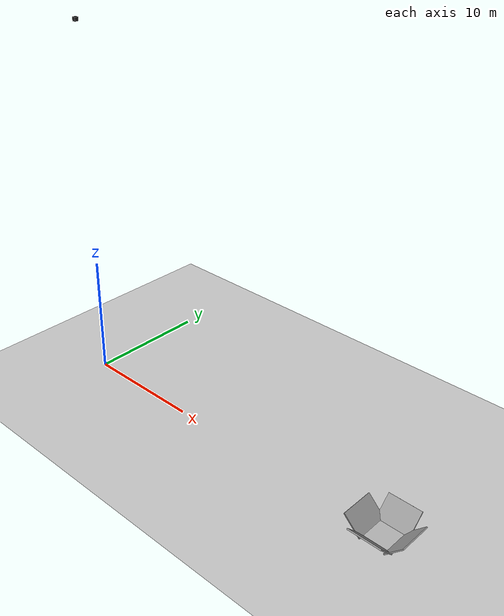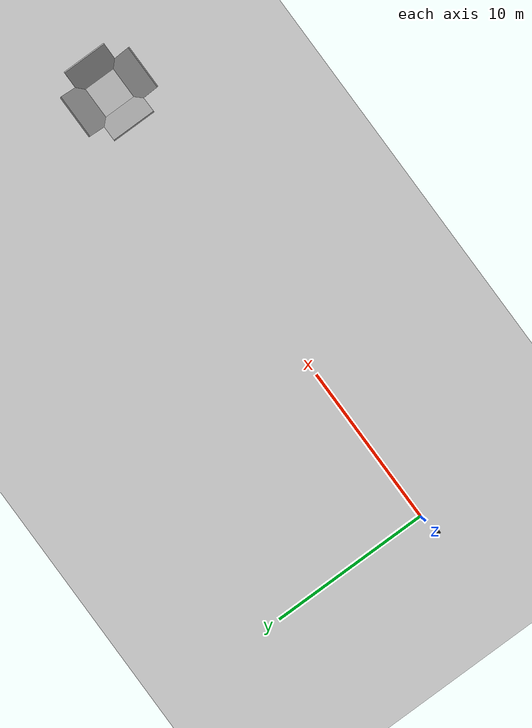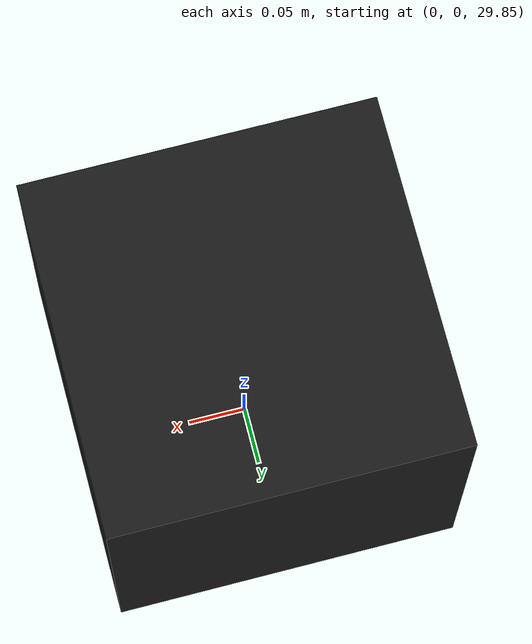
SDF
<sdf version="1.6">
 <world name="gokdogan_test">
  <include><uri>model://sun</uri></include>
  <include><uri>model://ground_plane</uri></include>
  <physics type="ode">
   <real_time_update_rate>200</real_time_update_rate>
   <max_step_size>0.005</max_step_size>
  </physics>
  <scene><ambient>0.6 0.6 0.6 1</ambient><background>0.5 0.7 1.0 1</background></scene>
  <model name="gokdogan_camera">
   <static>true</static>
   <pose>0 0 30 0 0 0</pose>
   <link name="camera_link">
    <visual name="body">
     <geometry><box><size>0.3 0.3 0.3</size></box></geometry>
     <material><ambient>0.1 0.1 0.1 1</ambient></material>
    </visual>
    <sensor name="camera" type="camera">
     <always_on>1</always_on>
     <update_rate>10</update_rate>
     <visualize>true</visualize>
     <camera>
      <horizontal_fov>1.431</horizontal_fov>
      <image><width>640</width><height>480</height><format>R8G8B8</format></image>
      <clip><near>0.1</near><far>3000</far></clip>
     </camera>
     <plugin name="camera_controller" filename="libgazebo_ros_camera.so">
      <ros>
       <namespace>/</namespace>
       <remapping>~/image_raw:=/camera/image</remapping>
       <remapping>~/camera_info:=/camera/camera_info</remapping>
      </ros>
      <camera_name>gokdogan_camera</camera_name>
      <frame_name>camera_link</frame_name>
     </plugin>
    </sensor>
   </link>
  </model>
  <include><uri>model://qr_ground_target</uri><name>qr_ground_target</name><pose>30 0 0 0 0 0</pose></include>
 </world>
</sdf>

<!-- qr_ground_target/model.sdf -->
<sdf version="1.6">
  <model name="qr_ground_target">
    <static>true</static>
    <link name="target">

      <!-- QR plakası: zeminde düz, üst yüzü yukarı bakar -->
      <visual name="qr_face">
        <pose>0 0 0.03 0 0 0</pose>
        <geometry><box><size>2.0 2.0 0.05</size></box></geometry>
        <material>
          <script>
            <uri>model://qr_plate/materials/scripts</uri>
            <uri>model://qr_plate/materials/textures</uri>
            <name>QrPlate/Diffuse</name>
          </script>
        </material>
      </visual>
      <collision name="qr_c">
        <pose>0 0 0.03 0 0 0</pose>
        <geometry><box><size>2.0 2.0 0.05</size></box></geometry>
      </collision>

      <!-- 4 engel: her biri 45° dışa doğru eğik, QR'ın kenarında (huni ağzı yukarı) -->
      <visual name="wall_yp">
        <pose>0 1.7 0.7 -0.785 0 0</pose>
        <geometry><box><size>2.8 0.1 2.0</size></box></geometry>
        <material><ambient>0.55 0.55 0.55 1</ambient><diffuse>0.6 0.6 0.6 1</diffuse></material>
      </visual>
      <visual name="wall_yn">
        <pose>0 -1.7 0.7 0.785 0 0</pose>
        <geometry><box><size>2.8 0.1 2.0</size></box></geometry>
        <material><ambient>0.55 0.55 0.55 1</ambient><diffuse>0.6 0.6 0.6 1</diffuse></material>
      </visual>
      <visual name="wall_xp">
        <pose>1.7 0 0.7 0 0.785 0</pose>
        <geometry><box><size>0.1 2.8 2.0</size></box></geometry>
        <material><ambient>0.55 0.55 0.55 1</ambient><diffuse>0.6 0.6 0.6 1</diffuse></material>
      </visual>
      <visual name="wall_xn">
        <pose>-1.7 0 0.7 0 -0.785 0</pose>
        <geometry><box><size>0.1 2.8 2.0</size></box></geometry>
        <material><ambient>0.55 0.55 0.55 1</ambient><diffuse>0.6 0.6 0.6 1</diffuse></material>
      </visual>

    </link>
  </model>
</sdf>
